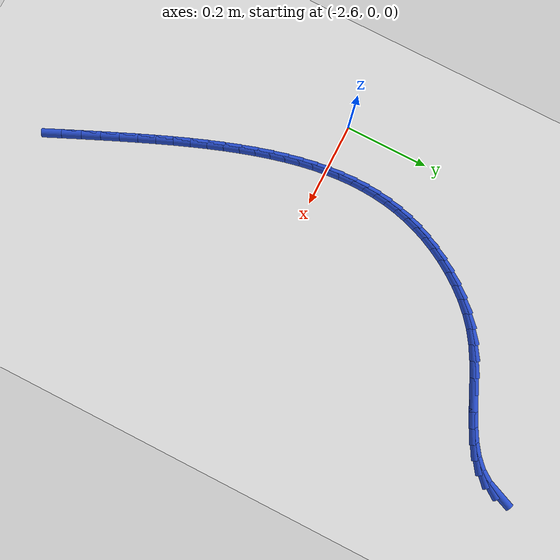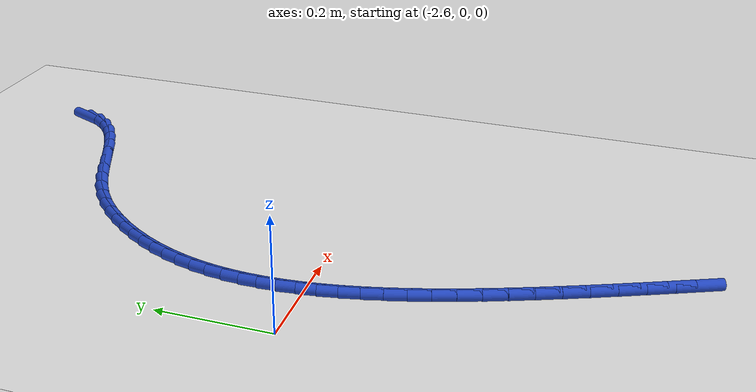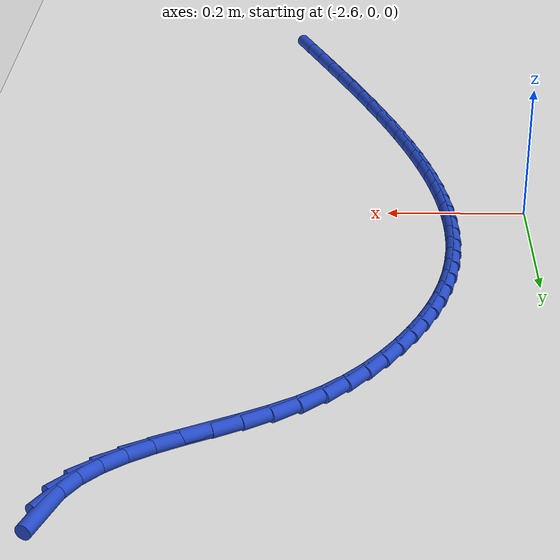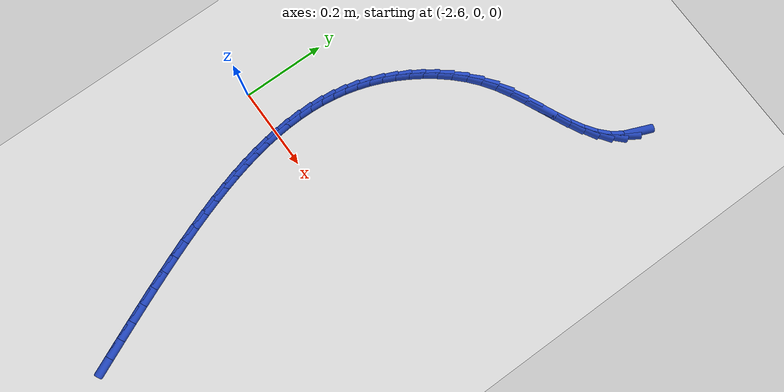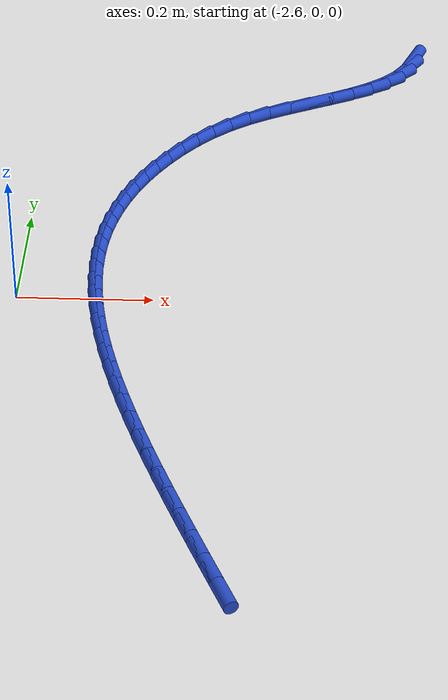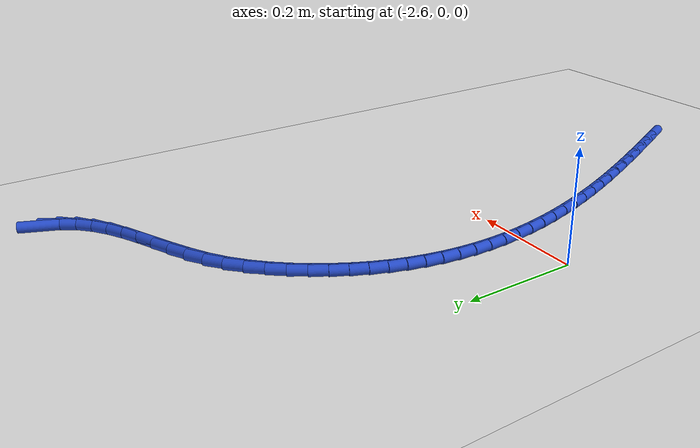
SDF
<sdf version="1.6">
 <world name="default">
  <model name="ground_plane">
   <static>1</static>
   <link name="link">
    <collision name="collision">
     <geometry><plane><normal>0 0 1</normal><size>100 100</size></plane></geometry>
     <surface><friction><ode><mu>100</mu><mu2>50</mu2></ode></friction></surface>
    </collision>
    <visual name="visual">
     <cast_shadows>0</cast_shadows>
     <geometry><plane><normal>0 0 1</normal><size>100 100</size></plane></geometry>
     <material>
      <script><uri>file://media/materials/scripts/gazebo.material</uri><name>Gazebo/WhiteGlow</name></script>
     </material>
    </visual>
   </link>
  </model>
  <model name="line">
   <link name="link_110">
    <pose>-2.005741608104542 0.6670511281447079 0.01 0 1.57 1.1795138012131225</pose>
    <collision name="collision">
     <geometry><cylinder><radius>0.01</radius><length>0.08</length></cylinder></geometry>
    </collision>
    <visual name="visual">
     <material>
      <script><name>Gazebo/Blue</name><uri>file://media/materials/scripts/gazebo.material</uri></script>
     </material>
     <geometry><cylinder><radius>0.01</radius><length>0.08</length></cylinder></geometry>
    </visual>
   </link>
   <link name="link_111">
    <pose>-2.0174437068632582 0.6386861814560691 0.01 0 1.57 0.961858544962639</pose>
    <collision name="collision">
     <geometry><cylinder><radius>0.01</radius><length>0.08</length></cylinder></geometry>
    </collision>
    <visual name="visual">
     <material>
      <script><name>Gazebo/Blue</name><uri>file://media/materials/scripts/gazebo.material</uri></script>
     </material>
     <geometry><cylinder><radius>0.01</radius><length>0.08</length></cylinder></geometry>
    </visual>
   </link>
   <link name="link_112">
    <pose>-2.034672876677444 0.6139791574786025 0.01 0 1.57 0.7650038057178649</pose>
    <collision name="collision">
     <geometry><cylinder><radius>0.01</radius><length>0.08</length></cylinder></geometry>
    </collision>
    <visual name="visual">
     <material>
      <script><name>Gazebo/Blue</name><uri>file://media/materials/scripts/gazebo.material</uri></script>
     </material>
     <geometry><cylinder><radius>0.01</radius><length>0.08</length></cylinder></geometry>
    </visual>
   </link>
   <link name="link_113">
    <pose>-2.056985879085331 0.5925582046761271 0.01 0 1.57 0.618393867236414</pose>
    <collision name="collision">
     <geometry><cylinder><radius>0.01</radius><length>0.08</length></cylinder></geometry>
    </collision>
    <visual name="visual">
     <material>
      <script><name>Gazebo/Blue</name><uri>file://media/materials/scripts/gazebo.material</uri></script>
     </material>
     <geometry><cylinder><radius>0.01</radius><length>0.08</length></cylinder></geometry>
    </visual>
   </link>
   <link name="link_114">
    <pose>-2.083463282530417 0.5737198748080589 0.01 0 1.57 0.5185383981336318</pose>
    <collision name="collision">
     <geometry><cylinder><radius>0.01</radius><length>0.08</length></cylinder></geometry>
    </collision>
    <visual name="visual">
     <material>
      <script><name>Gazebo/Blue</name><uri>file://media/materials/scripts/gazebo.material</uri></script>
     </material>
     <geometry><cylinder><radius>0.01</radius><length>0.08</length></cylinder></geometry>
    </visual>
   </link>
   <link name="link_115">
    <pose>-2.1131847829581814 0.5567601120704722 0.01 0 1.57 0.45770357193899325</pose>
    <collision name="collision">
     <geometry><cylinder><radius>0.01</radius><length>0.08</length></cylinder></geometry>
    </collision>
    <visual name="visual">
     <material>
      <script><name>Gazebo/Blue</name><uri>file://media/materials/scripts/gazebo.material</uri></script>
     </material>
     <geometry><cylinder><radius>0.01</radius><length>0.08</length></cylinder></geometry>
    </visual>
   </link>
   <link name="link_116">
    <pose>-2.1452300763141006 0.5409748606594417 0.01 0 1.57 0.42936947636416</pose>
    <collision name="collision">
     <geometry><cylinder><radius>0.01</radius><length>0.08</length></cylinder></geometry>
    </collision>
    <visual name="visual">
     <material>
      <script><name>Gazebo/Blue</name><uri>file://media/materials/scripts/gazebo.material</uri></script>
     </material>
     <geometry><cylinder><radius>0.01</radius><length>0.08</length></cylinder></geometry>
    </visual>
   </link>
   <link name="link_117">
    <pose>-2.1786788585436514 0.5256600647710414 0.01 0 1.57 0.42967081420737074</pose>
    <collision name="collision">
     <geometry><cylinder><radius>0.01</radius><length>0.08</length></cylinder></geometry>
    </collision>
    <visual name="visual">
     <material>
      <script><name>Gazebo/Blue</name><uri>file://media/materials/scripts/gazebo.material</uri></script>
     </material>
     <geometry><cylinder><radius>0.01</radius><length>0.08</length></cylinder></geometry>
    </visual>
   </link>
   <link name="link_118">
    <pose>-2.212610825592314 0.5101116686013455 0.01 0 1.57 0.45738547318708644</pose>
    <collision name="collision">
     <geometry><cylinder><radius>0.01</radius><length>0.08</length></cylinder></geometry>
    </collision>
    <visual name="visual">
     <material>
      <script><name>Gazebo/Blue</name><uri>file://media/materials/scripts/gazebo.material</uri></script>
     </material>
     <geometry><cylinder><radius>0.01</radius><length>0.08</length></cylinder></geometry>
    </visual>
   </link>
   <link name="link_119">
    <pose>-2.2461056734055624 0.49362561634642876 0.01 0 1.57 0.5135814685760868</pose>
    <collision name="collision">
     <geometry><cylinder><radius>0.01</radius><length>0.08</length></cylinder></geometry>
    </collision>
    <visual name="visual">
     <material>
      <script><name>Gazebo/Blue</name><uri>file://media/materials/scripts/gazebo.material</uri></script>
     </material>
     <geometry><cylinder><radius>0.01</radius><length>0.08</length></cylinder></geometry>
    </visual>
   </link>
   <link name="link_120">
    <pose>-2.2782430979288777 0.47549785220236523 0.01 0 1.57 0.6000772438746915</pose>
    <collision name="collision">
     <geometry><cylinder><radius>0.01</radius><length>0.08</length></cylinder></geometry>
    </collision>
    <visual name="visual">
     <material>
      <script><name>Gazebo/Blue</name><uri>file://media/materials/scripts/gazebo.material</uri></script>
     </material>
     <geometry><cylinder><radius>0.01</radius><length>0.08</length></cylinder></geometry>
    </visual>
   </link>
   <link name="link_121">
    <pose>-2.308125394633696 0.4550508843566799 0.01 0 1.57 0.6983679526990881</pose>
    <collision name="collision">
     <geometry><cylinder><radius>0.01</radius><length>0.08</length></cylinder></geometry>
    </collision>
    <visual name="visual">
     <material>
      <script><name>Gazebo/Blue</name><uri>file://media/materials/scripts/gazebo.material</uri></script>
     </material>
     <geometry><cylinder><radius>0.01</radius><length>0.08</length></cylinder></geometry>
    </visual>
   </link>
   <link name="link_122">
    <pose>-2.335353248019156 0.4321930386770532 0.01 0 1.57 0.7879734516773059</pose>
    <collision name="collision">
     <geometry><cylinder><radius>0.01</radius><length>0.08</length></cylinder></geometry>
    </collision>
    <visual name="visual">
     <material>
      <script><name>Gazebo/Blue</name><uri>file://media/materials/scripts/gazebo.material</uri></script>
     </material>
     <geometry><cylinder><radius>0.01</radius><length>0.08</length></cylinder></geometry>
    </visual>
   </link>
   <link name="link_123">
    <pose>-2.3600141248573516 0.40740481587056876 0.01 0 1.57 0.8680873026857232</pose>
    <collision name="collision">
     <geometry><cylinder><radius>0.01</radius><length>0.08</length></cylinder></geometry>
    </collision>
    <visual name="visual">
     <material>
      <script><name>Gazebo/Blue</name><uri>file://media/materials/scripts/gazebo.material</uri></script>
     </material>
     <geometry><cylinder><radius>0.01</radius><length>0.08</length></cylinder></geometry>
    </visual>
   </link>
   <link name="link_124">
    <pose>-2.3822157696913133 0.3811905515926553 0.01 0 1.57 0.9392360438438345</pose>
    <collision name="collision">
     <geometry><cylinder><radius>0.01</radius><length>0.08</length></cylinder></geometry>
    </collision>
    <visual name="visual">
     <material>
      <script><name>Gazebo/Blue</name><uri>file://media/materials/scripts/gazebo.material</uri></script>
     </material>
     <geometry><cylinder><radius>0.01</radius><length>0.08</length></cylinder></geometry>
    </visual>
   </link>
   <link name="link_125">
    <pose>-2.4020659270640774 0.35405458149874125 0.01 0 1.57 1.0025371038611404</pose>
    <collision name="collision">
     <geometry><cylinder><radius>0.01</radius><length>0.08</length></cylinder></geometry>
    </collision>
    <visual name="visual">
     <material>
      <script><name>Gazebo/Blue</name><uri>file://media/materials/scripts/gazebo.material</uri></script>
     </material>
     <geometry><cylinder><radius>0.01</radius><length>0.08</length></cylinder></geometry>
    </visual>
   </link>
   <link name="link_126">
    <pose>-2.4196707658235486 0.3264830604964832 0.01 0 1.57 1.06383821775878</pose>
    <collision name="collision">
     <geometry><cylinder><radius>0.01</radius><length>0.08</length></cylinder></geometry>
    </collision>
    <visual name="visual">
     <material>
      <script><name>Gazebo/Blue</name><uri>file://media/materials/scripts/gazebo.material</uri></script>
     </material>
     <geometry><cylinder><radius>0.01</radius><length>0.08</length></cylinder></geometry>
    </visual>
   </link>
   <link name="link_127">
    <pose>-2.4351119750280934 0.29867968981874055 0.01 0 1.57 1.1269377459077126</pose>
    <collision name="collision">
     <geometry><cylinder><radius>0.01</radius><length>0.08</length></cylinder></geometry>
    </collision>
    <visual name="visual">
     <material>
      <script><name>Gazebo/Blue</name><uri>file://media/materials/scripts/gazebo.material</uri></script>
     </material>
     <geometry><cylinder><radius>0.01</radius><length>0.08</length></cylinder></geometry>
    </visual>
   </link>
   <link name="link_128">
    <pose>-2.4484519265086924 0.27062528390215207 0.01 0 1.57 1.1912559223622892</pose>
    <collision name="collision">
     <geometry><cylinder><radius>0.01</radius><length>0.08</length></cylinder></geometry>
    </collision>
    <visual name="visual">
     <material>
      <script><name>Gazebo/Blue</name><uri>file://media/materials/scripts/gazebo.material</uri></script>
     </material>
     <geometry><cylinder><radius>0.01</radius><length>0.08</length></cylinder></geometry>
    </visual>
   </link>
   <link name="link_129">
    <pose>-2.4597524671048703 0.24229459970621942 0.01 0 1.57 1.2560114095418793</pose>
    <collision name="collision">
     <geometry><cylinder><radius>0.01</radius><length>0.08</length></cylinder></geometry>
    </collision>
    <visual name="visual">
     <material>
      <script><name>Gazebo/Blue</name><uri>file://media/materials/scripts/gazebo.material</uri></script>
     </material>
     <geometry><cylinder><radius>0.01</radius><length>0.08</length></cylinder></geometry>
    </visual>
   </link>
   <link name="link_130">
    <pose>-2.469075443656153 0.21366239419044464 0.01 0 1.57 1.320380761367395</pose>
    <collision name="collision">
     <geometry><cylinder><radius>0.01</radius><length>0.08</length></cylinder></geometry>
    </collision>
    <visual name="visual">
     <material>
      <script><name>Gazebo/Blue</name><uri>file://media/materials/scripts/gazebo.material</uri></script>
     </material>
     <geometry><cylinder><radius>0.01</radius><length>0.08</length></cylinder></geometry>
    </visual>
   </link>
   <link name="link_131">
    <pose>-2.4764827030020675 0.18470342431432993 0.01 0 1.57 1.3835512952029692</pose>
    <collision name="collision">
     <geometry><cylinder><radius>0.01</radius><length>0.08</length></cylinder></geometry>
    </collision>
    <visual name="visual">
     <material>
      <script><name>Gazebo/Blue</name><uri>file://media/materials/scripts/gazebo.material</uri></script>
     </material>
     <geometry><cylinder><radius>0.01</radius><length>0.08</length></cylinder></geometry>
    </visual>
   </link>
   <link name="link_132">
    <pose>-2.482036091982138 0.15539244703737704 0.01 0 1.57 1.4447722468559032</pose>
    <collision name="collision">
     <geometry><cylinder><radius>0.01</radius><length>0.08</length></cylinder></geometry>
    </collision>
    <visual name="visual">
     <material>
      <script><name>Gazebo/Blue</name><uri>file://media/materials/scripts/gazebo.material</uri></script>
     </material>
     <geometry><cylinder><radius>0.01</radius><length>0.08</length></cylinder></geometry>
    </visual>
   </link>
   <link name="link_133">
    <pose>-2.4857974574358903 0.12570421931908726 0.01 0 1.57 1.503396409896676</pose>
    <collision name="collision">
     <geometry><cylinder><radius>0.01</radius><length>0.08</length></cylinder></geometry>
    </collision>
    <visual name="visual">
     <material>
      <script><name>Gazebo/Blue</name><uri>file://media/materials/scripts/gazebo.material</uri></script>
     </material>
     <geometry><cylinder><radius>0.01</radius><length>0.08</length></cylinder></geometry>
    </visual>
   </link>
   <link name="link_134">
    <pose>-2.4878286462028494 0.09561349811896426 0.01 0 1.57 1.5589070686419784</pose>
    <collision name="collision">
     <geometry><cylinder><radius>0.01</radius><length>0.08</length></cylinder></geometry>
    </collision>
    <visual name="visual">
     <material>
      <script><name>Gazebo/Blue</name><uri>file://media/materials/scripts/gazebo.material</uri></script>
     </material>
     <geometry><cylinder><radius>0.01</radius><length>0.08</length></cylinder></geometry>
    </visual>
   </link>
   <link name="link_135">
    <pose>-2.488191505122544 0.06509504039650928 0.01 0 1.57 -1.5306639834840097</pose>
    <collision name="collision">
     <geometry><cylinder><radius>0.01</radius><length>0.08</length></cylinder></geometry>
    </collision>
    <visual name="visual">
     <material>
      <script><name>Gazebo/Blue</name><uri>file://media/materials/scripts/gazebo.material</uri></script>
     </material>
     <geometry><cylinder><radius>0.01</radius><length>0.08</length></cylinder></geometry>
    </visual>
   </link>
   <link name="link_136">
    <pose>-2.486947881034496 0.03412360311122427 0.01 0 1.57 -1.4823696448908763</pose>
    <collision name="collision">
     <geometry><cylinder><radius>0.01</radius><length>0.08</length></cylinder></geometry>
    </collision>
    <visual name="visual">
     <material>
      <script><name>Gazebo/Blue</name><uri>file://media/materials/scripts/gazebo.material</uri></script>
     </material>
     <geometry><cylinder><radius>0.01</radius><length>0.08</length></cylinder></geometry>
    </visual>
   </link>
   <link name="link_137">
    <pose>-2.4841596207782333 0.0026739432226111706 0.01 0 1.57 -1.4379178573128863</pose>
    <collision name="collision">
     <geometry><cylinder><radius>0.01</radius><length>0.08</length></cylinder></geometry>
    </collision>
    <visual name="visual">
     <material>
      <script><name>Gazebo/Blue</name><uri>file://media/materials/scripts/gazebo.material</uri></script>
     </material>
     <geometry><cylinder><radius>0.01</radius><length>0.08</length></cylinder></geometry>
    </visual>
   </link>
   <link name="link_138">
    <pose>-2.479888571193281 -0.02927918230982786 0.01 0 1.57 -1.397321521760769</pose>
    <collision name="collision">
     <geometry><cylinder><radius>0.01</radius><length>0.08</length></cylinder></geometry>
    </collision>
    <visual name="visual">
     <material>
      <script><name>Gazebo/Blue</name><uri>file://media/materials/scripts/gazebo.material</uri></script>
     </material>
     <geometry><cylinder><radius>0.01</radius><length>0.08</length></cylinder></geometry>
    </visual>
   </link>
   <link name="link_139">
    <pose>-2.4741965791191642 -0.061761016526590946 0.01 0 1.57 -1.3605137578588435</pose>
    <collision name="collision">
     <geometry><cylinder><radius>0.01</radius><length>0.08</length></cylinder></geometry>
    </collision>
    <visual name="visual">
     <material>
      <script><name>Gazebo/Blue</name><uri>file://media/materials/scripts/gazebo.material</uri></script>
     </material>
     <geometry><cylinder><radius>0.01</radius><length>0.08</length></cylinder></geometry>
    </visual>
   </link>
   <link name="link_140">
    <pose>-2.467145491395409 -0.09479680246817694 0.01 0 1.57 -1.3273696354831401</pose>
    <collision name="collision">
     <geometry><cylinder><radius>0.01</radius><length>0.08</length></cylinder></geometry>
    </collision>
    <visual name="visual">
     <material>
      <script><name>Gazebo/Blue</name><uri>file://media/materials/scripts/gazebo.material</uri></script>
     </material>
     <geometry><cylinder><radius>0.01</radius><length>0.08</length></cylinder></geometry>
    </visual>
   </link>
   <link name="link_141">
    <pose>-2.4587971548615424 -0.128411783175082 0.01 0 1.57 -1.2977252621307926</pose>
    <collision name="collision">
     <geometry><cylinder><radius>0.01</radius><length>0.08</length></cylinder></geometry>
    </collision>
    <visual name="visual">
     <material>
      <script><name>Gazebo/Blue</name><uri>file://media/materials/scripts/gazebo.material</uri></script>
     </material>
     <geometry><cylinder><radius>0.01</radius><length>0.08</length></cylinder></geometry>
    </visual>
   </link>
   <link name="link_142">
    <pose>-2.449213416357087 -0.16263120168780498 0.01 0 1.57 -1.2713934461817076</pose>
    <collision name="collision">
     <geometry><cylinder><radius>0.01</radius><length>0.08</length></cylinder></geometry>
    </collision>
    <visual name="visual">
     <material>
      <script><name>Gazebo/Blue</name><uri>file://media/materials/scripts/gazebo.material</uri></script>
     </material>
     <geometry><cylinder><radius>0.01</radius><length>0.08</length></cylinder></geometry>
    </visual>
   </link>
   <link name="link_143">
    <pose>-2.438456122721571 -0.19748030104684397 0.01 0 1.57 -1.2481758486184338</pose>
    <collision name="collision">
     <geometry><cylinder><radius>0.01</radius><length>0.08</length></cylinder></geometry>
    </collision>
    <visual name="visual">
     <material>
      <script><name>Gazebo/Blue</name><uri>file://media/materials/scripts/gazebo.material</uri></script>
     </material>
     <geometry><cylinder><radius>0.01</radius><length>0.08</length></cylinder></geometry>
    </visual>
   </link>
   <link name="link_144">
    <pose>-2.42658712079452 -0.23298432429269694 0.01 0 1.57 -1.227871942131965</pose>
    <collision name="collision">
     <geometry><cylinder><radius>0.01</radius><length>0.08</length></cylinder></geometry>
    </collision>
    <visual name="visual">
     <material>
      <script><name>Gazebo/Blue</name><uri>file://media/materials/scripts/gazebo.material</uri></script>
     </material>
     <geometry><cylinder><radius>0.01</radius><length>0.08</length></cylinder></geometry>
    </visual>
   </link>
   <link name="link_145">
    <pose>-2.4136682574154587 -0.2691685144658619 0.01 0 1.57 -1.2102852831082906</pose>
    <collision name="collision">
     <geometry><cylinder><radius>0.01</radius><length>0.08</length></cylinder></geometry>
    </collision>
    <visual name="visual">
     <material>
      <script><name>Gazebo/Blue</name><uri>file://media/materials/scripts/gazebo.material</uri></script>
     </material>
     <geometry><cylinder><radius>0.01</radius><length>0.08</length></cylinder></geometry>
    </visual>
   </link>
   <link name="link_146">
    <pose>-2.399761379423912 -0.30605811460683663 0.01 0 1.57 -1.1952276444351473</pose>
    <collision name="collision">
     <geometry><cylinder><radius>0.01</radius><length>0.08</length></cylinder></geometry>
    </collision>
    <visual name="visual">
     <material>
      <script><name>Gazebo/Blue</name><uri>file://media/materials/scripts/gazebo.material</uri></script>
     </material>
     <geometry><cylinder><radius>0.01</radius><length>0.08</length></cylinder></geometry>
    </visual>
   </link>
   <link name="link_147">
    <pose>-2.3849283336594076 -0.3436783677561194 0.01 0 1.57 -1.1825215184784892</pose>
    <collision name="collision">
     <geometry><cylinder><radius>0.01</radius><length>0.08</length></cylinder></geometry>
    </collision>
    <visual name="visual">
     <material>
      <script><name>Gazebo/Blue</name><uri>file://media/materials/scripts/gazebo.material</uri></script>
     </material>
     <geometry><cylinder><radius>0.01</radius><length>0.08</length></cylinder></geometry>
    </visual>
   </link>
   <link name="link_148">
    <pose>-2.3692309669614695 -0.382054516954208 0.01 0 1.57 -1.1720014242489982</pose>
    <collision name="collision">
     <geometry><cylinder><radius>0.01</radius><length>0.08</length></cylinder></geometry>
    </collision>
    <visual name="visual">
     <material>
      <script><name>Gazebo/Blue</name><uri>file://media/materials/scripts/gazebo.material</uri></script>
     </material>
     <geometry><cylinder><radius>0.01</radius><length>0.08</length></cylinder></geometry>
    </visual>
   </link>
   <link name="link_149">
    <pose>-2.352731126169624 -0.4212118052416018 0.01 0 1.57 -1.163514367939686</pose>
    <collision name="collision">
     <geometry><cylinder><radius>0.01</radius><length>0.08</length></cylinder></geometry>
    </collision>
    <visual name="visual">
     <material>
      <script><name>Gazebo/Blue</name><uri>file://media/materials/scripts/gazebo.material</uri></script>
     </material>
     <geometry><cylinder><radius>0.01</radius><length>0.08</length></cylinder></geometry>
    </visual>
   </link>
   <link name="link_150">
    <pose>-2.3354906581233967 -0.46117547565879613 0.01 0 1.57 -1.1569197262759165</pose>
    <collision name="collision">
     <geometry><cylinder><radius>0.01</radius><length>0.08</length></cylinder></geometry>
    </collision>
    <visual name="visual">
     <material>
      <script><name>Gazebo/Blue</name><uri>file://media/materials/scripts/gazebo.material</uri></script>
     </material>
     <geometry><cylinder><radius>0.01</radius><length>0.08</length></cylinder></geometry>
    </visual>
   </link>
   <link name="link_151">
    <pose>-2.3175714096623143 -0.5019707712462907 0.01 0 1.57 -1.1520887538871916</pose>
    <collision name="collision">
     <geometry><cylinder><radius>0.01</radius><length>0.08</length></cylinder></geometry>
    </collision>
    <visual name="visual">
     <material>
      <script><name>Gazebo/Blue</name><uri>file://media/materials/scripts/gazebo.material</uri></script>
     </material>
     <geometry><cylinder><radius>0.01</radius><length>0.08</length></cylinder></geometry>
    </visual>
   </link>
   <link name="link_152">
    <pose>-2.2990352276259003 -0.543622935044583 0.01 0 1.57 -1.1489038608534012</pose>
    <collision name="collision">
     <geometry><cylinder><radius>0.01</radius><length>0.08</length></cylinder></geometry>
    </collision>
    <visual name="visual">
     <material>
      <script><name>Gazebo/Blue</name><uri>file://media/materials/scripts/gazebo.material</uri></script>
     </material>
     <geometry><cylinder><radius>0.01</radius><length>0.08</length></cylinder></geometry>
    </visual>
   </link>
   <link name="link_153">
    <pose>-2.279943958853682 -0.5861572100941712 0.01 0 1.57 -1.147257763913971</pose>
    <collision name="collision">
     <geometry><cylinder><radius>0.01</radius><length>0.08</length></cylinder></geometry>
    </collision>
    <visual name="visual">
     <material>
      <script><name>Gazebo/Blue</name><uri>file://media/materials/scripts/gazebo.material</uri></script>
     </material>
     <geometry><cylinder><radius>0.01</radius><length>0.08</length></cylinder></geometry>
    </visual>
   </link>
  </model>
 </world>
</sdf>
